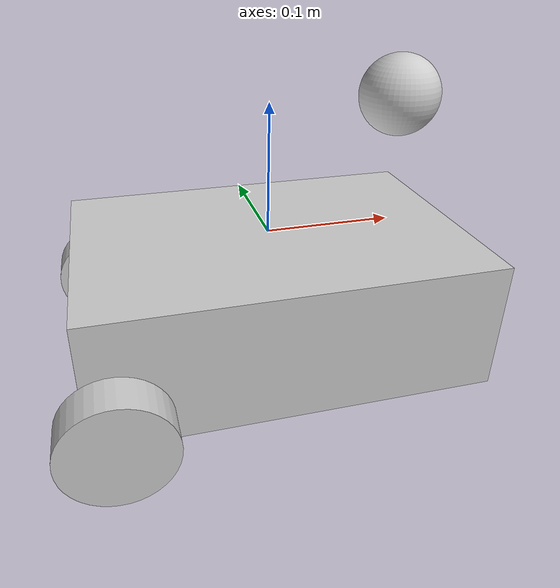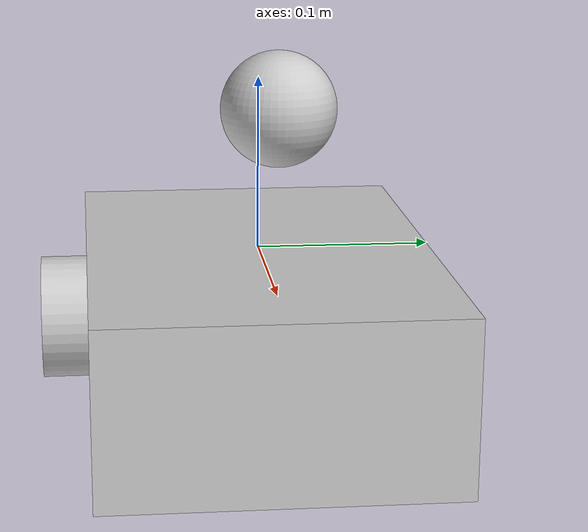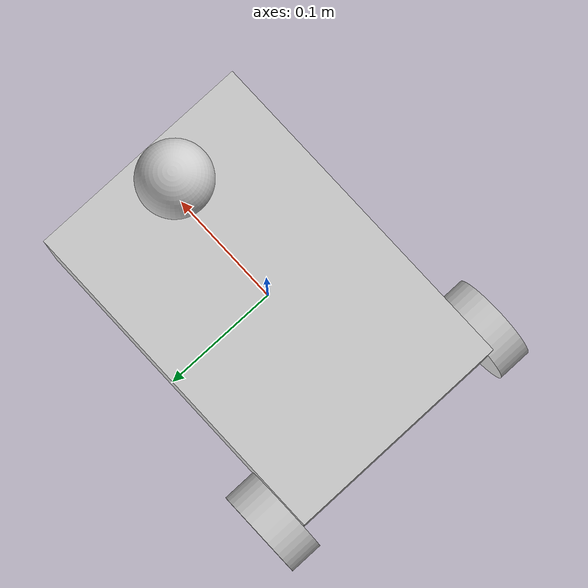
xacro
<robot xmlns:xacro="http://www.ros.org/wiki/xacro" name="simple_linefollower_robot">

  <!-- density of aluminum (kg/m^3) -->
  <xacro:property name="rho" value="2700.0"/>

  <!-- geometry (meters) -->
  <xacro:property name="sphere_r" value="0.06"/>
  <xacro:property name="wheel_r"  value="0.04"/>
  <xacro:property name="wheel_w"  value="0.03"/>
  <xacro:property name="box_l"    value="0.30"/>
  <xacro:property name="box_w"    value="0.20"/>
  <xacro:property name="box_h"    value="0.10"/>

  <!-- volumes -->
  <xacro:property name="vol_sphere" value="${(4.0/3.0)*pi*(sphere_r**3)}"/>
  <xacro:property name="vol_wheel"  value="${pi*(wheel_r**2)*wheel_w}"/>
  <xacro:property name="vol_box"    value="${box_l*box_w*box_h}"/>

  <!-- masses -->
  <xacro:property name="mass_sphere" value="${rho * vol_sphere}"/>
  <xacro:property name="mass_wheel"  value="${rho * vol_wheel}"/>
  <xacro:property name="mass_box"    value="${rho * vol_box}"/>

  <!-- inertias -->
  <xacro:property name="I_sphere" value="${(2.0/5.0) * mass_sphere * (sphere_r**2)}"/>
  <xacro:property name="I_wheel_zz" value="${0.5 * mass_wheel * (wheel_r**2)}"/>
  <xacro:property name="I_wheel_xx" value="${(1.0/12.0) * mass_wheel * (3.0*(wheel_r**2) + (wheel_w**2))}"/>
  <xacro:property name="I_wheel_yy" value="${I_wheel_xx}"/>
  <xacro:property name="I_box_xx" value="${(1.0/12.0) * mass_box * (box_h**2 + box_w**2)}"/>
  <xacro:property name="I_box_yy" value="${(1.0/12.0) * mass_box * (box_l**2 + box_h**2)}"/>
  <xacro:property name="I_box_zz" value="${(1.0/12.0) * mass_box * (box_l**2 + box_w**2)}"/>

  <!-- BASE (box) -->
  <link name="base_link">
    <inertial>
      <origin xyz="0 0 0" rpy="0 0 0"/>
      <mass value="${mass_box}"/>
      <inertia ixx="${I_box_xx}" ixy="0" ixz="0" iyy="${I_box_yy}" iyz="0" izz="${I_box_zz}"/>
    </inertial>

    <visual>
      <origin xyz="0 0 0" rpy="0 0 0"/>
      <geometry>
        <mesh filename="package://simple_linefollower_robot/meshes/base_link.STL"/>
      </geometry>
      <material name="aluminum">
        <color rgba="0.8 0.8 0.8 1"/>
      </material>
    </visual>

    <collision>
      <origin xyz="0 0 0" rpy="0 0 0"/>
      <geometry>
        <!-- use self-closing box tag (parser-friendly) -->
        <box size="${box_l} ${box_w} ${box_h}"/>
      </geometry>
    </collision>
  </link>

  <!-- world -> base fixed joint -->
  <link name="world"/>
  <joint name="world_to_base" type="fixed">
    <parent link="world"/>
    <child link="base_link"/>
    <origin xyz="0 0 0" rpy="0 0 0"/>
  </joint>

  <!-- LEFT WHEEL -->
  <link name="LW_link">
    <inertial>
      <origin xyz="0 0 0" rpy="0 0 0"/>
      <mass value="${mass_wheel}"/>
      <inertia ixx="${I_wheel_xx}" ixy="0" ixz="0" iyy="${I_wheel_yy}" iyz="0" izz="${I_wheel_zz}"/>
    </inertial>

    <visual>
      <origin xyz="0 0 0" rpy="0 0 0"/>
      <geometry>
        <mesh filename="package://simple_linefollower_robot/meshes/LW_link.STL"/>
      </geometry>
      <material name="aluminum"/>
    </visual>

    <collision>
      <origin xyz="0 0 0" rpy="0 0 0"/>
      <geometry>
        <cylinder radius="${wheel_r}" length="${wheel_w}"/>
      </geometry>
    </collision>
  </link>

  <joint name="LW_joint" type="continuous">
    <origin xyz="-0.13 0.13 -0.08" rpy="1.5708 0 0"/>
    <parent link="base_link"/>
    <child  link="LW_link"/>
    <axis  xyz="0 0 -1"/>
  </joint>

  <!-- RIGHT WHEEL -->
  <link name="RW_link">
    <inertial>
      <origin xyz="0 0 0" rpy="0 0 0"/>
      <mass value="${mass_wheel}"/>
      <inertia ixx="${I_wheel_xx}" ixy="0" ixz="0" iyy="${I_wheel_yy}" iyz="0" izz="${I_wheel_zz}"/>
    </inertial>

    <visual>
      <origin xyz="0 0 0" rpy="0 0 0"/>
      <geometry>
        <mesh filename="package://simple_linefollower_robot/meshes/RW_link.STL"/>
      </geometry>
      <material name="aluminum"/>
    </visual>

    <collision>
      <origin xyz="0 0 0" rpy="0 0 0"/>
      <geometry>
        <cylinder radius="${wheel_r}" length="${wheel_w}"/>
      </geometry>
    </collision>
  </link>

  <joint name="RW_joint" type="continuous">
    <origin xyz="-0.13 -0.13 -0.08" rpy="1.5708 0 0"/>
    <parent link="base_link"/>
    <child  link="RW_link"/>
    <axis  xyz="0 0 1"/>
  </joint>

  <!-- SPHERE -->
  <link name="sphear_link">
    <inertial>
      <origin xyz="0 0 0" rpy="0 0 0"/>
      <mass value="${mass_sphere}"/>
      <inertia ixx="${I_sphere}" ixy="0" ixz="0" iyy="${I_sphere}" iyz="0" izz="${I_sphere}"/>
    </inertial>

    <visual>
      <origin xyz="0 0 0" rpy="0 0 0"/>
      <geometry>
        <mesh filename="package://simple_linefollower_robot/meshes/sphear_link.STL"/>
      </geometry>
      <material name="aluminum"/>
    </visual>

    <collision>
      <origin xyz="0 0 0" rpy="0 0 0"/>
      <geometry>
        <sphere radius="${sphere_r}"/>
      </geometry>
    </collision>
  </link>

  <joint name="sphear_joint" type="continuous">
    <origin xyz="0.1 0 0.1" rpy="1.5708 1.5708 1.5708"/>
    <parent link="base_link"/>
    <child  link="sphear_link"/>
    <axis  xyz="0.57735 0.57735 0.57735"/>
  </joint>

</robot>
